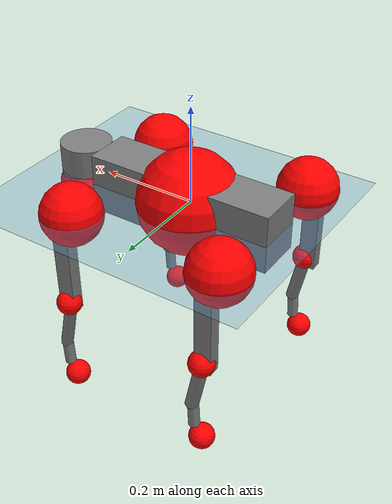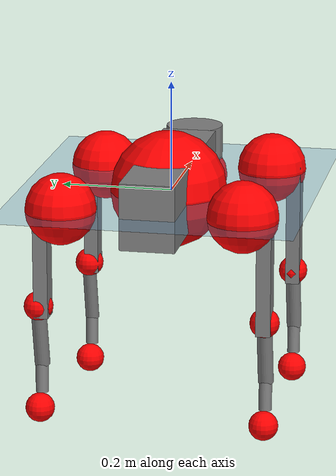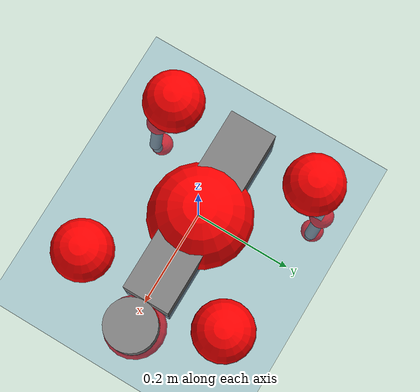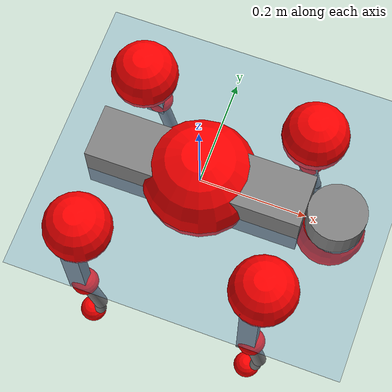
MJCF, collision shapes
<mujoco model="go2">
  <compiler angle="radian" assetdir="assets" balanceinertia="true" inertiafromgeom="false"/>

  <option timestep="0.005" density="1.2" viscosity="2e-05"/>

  <size nkey="1"/>

  <visual>
    <quality shadowsize="8192"/>
    <map shadowclip="0.5"/>
  </visual>

  <default>
    <default class="/">
      <geom contype="0" conaffinity="0" group="1" solref="-1000 -80"/>
      <site size="0.01 0.005 0.005" group="5"/>
      <general forcelimited="true" biastype="affine" gainprm="20" biasprm="0 -20 -0.5"/>
      <default class="go2">
        <joint armature="0.01" damping="0.01" frictionloss="0.2"/>
        <geom condim="1" margin="0.001"/>
        <default class="visual">
          <geom type="mesh" group="2"/>
        </default>
        <default class="collision">
          <geom group="3"/>
          <default class="foot">
            <geom size="0.022 0 0" condim="6" priority="1" friction="0.8 0.02 0.01" solimp="0.015 1 0.022"/>
          </default>
        </default>
        <default class="reward_collision_sphere">
          <geom group="5" rgba="1 0 0 1"/>
        </default>
      </default>
    </default>
  </default>

  <asset>
    <texture type="skybox" colorspace="auto" name="//unnamed_texture_0" builtin="gradient" rgb1="0.95 0.95 0.95" rgb2="0.95 0.95 0.95" width="100" height="600"/>
    <texture type="2d" colorspace="auto" name="texplane" builtin="checker" rgb1="0.345 0.575 0.748" rgb2="0.345 0.575 0.748" markrgb="1 1 1" width="512" height="512"/>
    <material name="MatPlane" class="/" texture="texplane" texuniform="true" texrepeat="2 2" specular="0.9"/>
    <material name="metal" class="/" rgba="0.9 0.95 0.95 1"/>
    <material name="black" class="/" rgba="0 0 0 1"/>
    <material name="white" class="/"/>
    <material name="gray" class="/" rgba="0.671705 0.692426 0.77427 1"/>
    <mesh name="base_0" class="/" file="base_0.obj"/>
    <mesh name="base_1" class="/" file="base_1.obj"/>
    <mesh name="base_2" class="/" file="base_2.obj"/>
    <mesh name="base_3" class="/" file="base_3.obj"/>
    <mesh name="base_4" class="/" file="base_4.obj"/>
    <mesh name="hip_0" class="/" file="hip_0.obj"/>
    <mesh name="hip_1" class="/" file="hip_1.obj"/>
    <mesh name="thigh_0" class="/" file="thigh_0.obj"/>
    <mesh name="thigh_1" class="/" file="thigh_1.obj"/>
    <mesh name="thigh_mirror_0" class="/" file="thigh_mirror_0.obj"/>
    <mesh name="thigh_mirror_1" class="/" file="thigh_mirror_1.obj"/>
    <mesh name="calf_0" class="/" file="calf_0.obj"/>
    <mesh name="calf_1" class="/" file="calf_1.obj"/>
    <mesh name="calf_mirror_0" class="/" file="calf_mirror_0.obj"/>
    <mesh name="calf_mirror_1" class="/" file="calf_mirror_1.obj"/>
    <mesh name="foot" class="/" file="foot.obj"/>
  </asset>

  <worldbody>
    <geom name="floor" class="/" size="100 100 0.125" type="plane" group="0" material="MatPlane"/>
    <light name="toplight_shadow" class="/" pos="0 0 5" dir="0.0990148 0.0990148 -0.990148" type="directional" ambient="0.04 0.04 0.04" diffuse="0.55 0.55 0.55" specular="0.12 0.12 0.12"/>
    <light name="toplight_fill" class="/" pos="0 0 5" dir="0.0990148 0.0990148 -0.990148" type="directional" castshadow="false" ambient="0.04 0.04 0.04" diffuse="0.3 0.3 0.3" specular="0.08 0.08 0.08"/>
    <body name="trunk" childclass="go2" pos="0.000254448 0.00442195 0.00210164" quat="1 1.73235e-07 9.57851e-05 1.38384e-05">
      <inertial pos="0.0193501 0.00507273 -0.00459813" quat="-0.00182715 0.741781 -0.0181306 0.670394" mass="8.38433" diaginertia="0.0590348 0.509411 0.0144804"/>
      <joint name="//unnamed_joint_0" type="free" armature="0" damping="0" frictionloss="0"/>
      <geom name="//unnamed_geom_1" class="visual" material="black" mesh="base_0"/>
      <geom name="//unnamed_geom_2" class="visual" material="black" mesh="base_1"/>
      <geom name="//unnamed_geom_3" class="visual" material="black" mesh="base_2"/>
      <geom name="//unnamed_geom_4" class="visual" material="white" mesh="base_3"/>
      <geom name="//unnamed_geom_5" class="visual" material="gray" mesh="base_4"/>
      <geom name="trunk_1" class="collision" size="0.199232 0.0495167 0.0603734" type="box"/>
      <geom name="trunk_2" class="collision" size="0.0529591 0.0476632" pos="0.252579 0 0.00899575" type="cylinder"/>
      <geom name="trunk_3" class="collision" size="0.0497815" pos="0.259669 0 -0.0539745"/>
      <geom name="//unnamed_geom_9" class="reward_collision_sphere" size="0.105918"/>
      <geom name="//unnamed_geom_10" class="reward_collision_sphere" size="0.0635509" pos="0.248148 0 -0.0404809"/>
      <site name="imu" pos="-0.0431839 -0.00954348 0.0601033" size="0.0105918"/>
      <camera name="track" pos="0 -2.78345 0" quat="0.707107 0.707107 0 0" mode="trackcom"/>
      <camera name="ego_camera" pos="0.276508 0 0.0404809" quat="-0.5 -0.5 0.5 0.5"/>
      <body name="FL_hip" pos="0.168427 0.0561363 -0.00667406" quat="0.999997 -0.000638674 0.00209656 0.00105702">
        <inertial pos="-0.00659789 0.00319852 -0.001614" quat="0.501951 0.494015 0.499963 0.504015" mass="0.836828" diaginertia="0.000482836 0.00335985 0.000277116"/>
        <joint name="FL_hip_joint" pos="0 0 0" axis="0.999992 0.00321093 -0.00230136" range="-1.22382 1.01807" armature="0.00981982" damping="0.0302069" frictionloss="0.179119"/>
        <geom name="//unnamed_geom_11" class="visual" material="metal" mesh="hip_0"/>
        <geom name="//unnamed_geom_12" class="visual" material="gray" mesh="hip_1"/>
        <geom name="//unnamed_geom_13" class="collision" size="0.0487224 0.0211836" pos="0 0.111338 0" quat="0.707107 0.707107 0 0" type="cylinder"/>
        <geom name="//unnamed_geom_14" class="reward_collision_sphere" size="0.0635509" pos="0 0.0974209 0"/>
        <body name="FL_thigh" pos="0.00110513 0.124349 -0.00167349" quat="0.999998 -0.000601066 0.00165888 -0.000231119">
          <inertial pos="-0.0068277 -0.0333381 -0.027286" quat="0.825991 0.0966244 -0.0460557 0.553427" mass="1.36943" diaginertia="0.0034109 0.0309001 0.000522929"/>
          <joint name="FL_thigh_joint" pos="0 0 0" axis="-0.0211873 0.999727 0.00985776" range="-1.58999 3.35125" armature="0.00794445" damping="0.01957" frictionloss="0.213733"/>
          <geom name="//unnamed_geom_15" class="visual" material="metal" mesh="thigh_0"/>
          <geom name="//unnamed_geom_16" class="visual" material="gray" mesh="thigh_1"/>
          <geom name="//unnamed_geom_17" class="collision" size="0.112803 0.012975 0.0180061" pos="0 0 -0.0958048" quat="0.707107 0 0.707107 0" type="box"/>
          <body name="FL_calf" pos="-0.00129905 0.00681597 -0.191803" quat="1 0.000265877 -0.000263616 0.000654428">
            <inertial pos="0.00271091 -0.000442457 -0.119074" quat="0.71124 0.00123255 -0.00320604 0.702941" mass="0.278527" diaginertia="0.000855927 0.00692923 3.42212e-05"/>
            <joint name="FL_calf_joint" pos="0 0 0" axis="-0.00500857 0.999985 0.00199606" range="-2.56577 -0.83208" armature="0.0119804" damping="0.00901212" frictionloss="0.219309"/>
            <geom name="//unnamed_geom_18" class="visual" material="gray" mesh="calf_0"/>
            <geom name="//unnamed_geom_19" class="visual" material="black" mesh="calf_1"/>
            <geom name="FL_calf0" class="collision" size="0.0127102 0.0635509" pos="0.00708994 0 -0.0539745" quat="0.994493 0 -0.104807 0" type="cylinder"/>
            <geom name="//unnamed_geom_21" class="collision" size="0.011651 0.0344234" pos="0.0177249 0 -0.133137" quat="0.999688 0 0.0249974 0" type="cylinder"/>
            <geom name="//unnamed_geom_22" class="visual" pos="0 0 -0.19161" quat="1 0 0 0" material="black" mesh="foot"/>
            <geom name="FL_foot" class="foot" size="0.022363" pos="-0.00177249 0 -0.19161"/>
            <geom name="//unnamed_geom_24" class="reward_collision_sphere" size="0.0264795"/>
            <geom name="//unnamed_geom_25" class="reward_collision_sphere" size="0.0264795" pos="-0.00177249 0 -0.19161"/>
            <site name="FL_foot" class="foot" pos="-0.00177249 0 -0.19161" size="0.0105918"/>
          </body>
        </body>
      </body>
      <body name="FR_hip" pos="0.175517 -0.0634941 0.00129352" quat="1 -0.000708668 3.75711e-05 0.000123278">
        <inertial pos="-0.00498918 -0.000958602 0.00107858" quat="0.502591 0.500666 0.494763 0.501941" mass="0.88746" diaginertia="0.000490554 0.00354735 0.000272845"/>
        <joint name="FR_hip_joint" pos="0 0 0" axis="0.99989 -0.0137573 -0.00547989" stiffness="0.00143172" range="-1.04823 1.00808" armature="0.0111317" damping="0.011773" frictionloss="0.216242"/>
        <geom name="//unnamed_geom_26" class="visual" pos="0 4.28742e-09 1.83896e-07" quat="4.63268e-05 1 0 0" material="metal" mesh="hip_0"/>
        <geom name="//unnamed_geom_27" class="visual" pos="0 6.95042e-09 -4.54846e-07" quat="4.63268e-05 1 0 0" material="gray" mesh="hip_1"/>
        <geom name="//unnamed_geom_28" class="collision" size="0.0487224 0.0211836" pos="0 -0.111338 0" quat="0.707107 0.707107 0 0" type="cylinder"/>
        <geom name="//unnamed_geom_29" class="reward_collision_sphere" size="0.0635509" pos="0 -0.0974209 0"/>
        <body name="FR_thigh" pos="-0.00703256 -0.141316 -0.00833932" quat="1 -0.000206709 -0.000265797 -0.000390632">
          <inertial pos="-0.00260439 0.0393441 -0.031138" quat="0.548005 -0.0102156 0.0811424 0.832467" mass="1.22274" diaginertia="0.00311909 0.0284181 0.000483802"/>
          <joint name="FR_thigh_joint" pos="0 0 0" axis="-0.005727 -0.999961 0.00668075" range="-3.3468 1.57325" armature="0.0117469" damping="0.0153473" frictionloss="0.214698"/>
          <geom name="//unnamed_geom_30" class="visual" material="metal" mesh="thigh_mirror_0"/>
          <geom name="//unnamed_geom_31" class="visual" material="gray" mesh="thigh_mirror_1"/>
          <geom name="//unnamed_geom_32" class="collision" size="0.112803 0.012975 0.0180061" pos="0 0 -0.0958048" quat="0.707107 0 0.707107 0" type="box"/>
          <body name="FR_calf" pos="0.00711587 0.00192596 -0.189" quat="0.999996 -0.00111324 0.000890433 -0.00248209">
            <inertial pos="0.00566578 0.000702815 -0.130481" quat="0.703562 -0.00108768 -0.0101762 0.71056" mass="0.295287" diaginertia="0.000834048 0.00760995 3.17049e-05"/>
            <joint name="FR_calf_joint" pos="0 0 0" axis="0.038574 -0.999188 0.0116021" stiffness="0.0189628" range="0.881119 2.75561" armature="0.00718272" damping="0" frictionloss="0.270892"/>
            <geom name="//unnamed_geom_33" class="visual" material="gray" mesh="calf_mirror_0"/>
            <geom name="//unnamed_geom_34" class="visual" material="black" mesh="calf_mirror_1"/>
            <geom name="FR_calf0" class="collision" size="0.0137694 0.0635509" pos="0.00886243 0 -0.0539745" quat="0.995004 0 -0.0998334 0" type="cylinder"/>
            <geom name="//unnamed_geom_36" class="collision" size="0.011651 0.0344234" pos="0.0177249 0 -0.133137" quat="0.999688 0 0.0249974 0" type="cylinder"/>
            <geom name="//unnamed_geom_37" class="visual" pos="0 0 -0.19161" quat="1 0 0 0" material="black" mesh="foot"/>
            <geom name="FR_foot" class="foot" size="0.0229427" pos="-0.00177249 0 -0.19161"/>
            <geom name="//unnamed_geom_39" class="reward_collision_sphere" size="0.0264795"/>
            <geom name="//unnamed_geom_40" class="reward_collision_sphere" size="0.0264795" pos="-0.00177249 0 -0.19161"/>
            <site name="FR_foot" class="foot" pos="-0.00177249 0 -0.19161" size="0.0105918"/>
          </body>
        </body>
      </body>
      <body name="RL_hip" pos="-0.169341 0.0627446 0.000949331" quat="1 4.84726e-05 6.48896e-05 -2.53781e-06">
        <inertial pos="0.00433253 0.00780242 -0.00188414" quat="0.505596 0.499755 0.499483 0.49511" mass="0.812154" diaginertia="0.000477798 0.00309911 0.000281629"/>
        <joint name="RL_hip_joint" pos="0 0 0" axis="-0.999943 0.00624369 0.00868624" range="-1.01558 1.05284" armature="0.0100726" damping="0.0061869" frictionloss="0.231523"/>
        <geom name="//unnamed_geom_41" class="visual" pos="1.16148e-10 0 2.27677e-08" quat="4.63268e-05 0 1 0" material="metal" mesh="hip_0"/>
        <geom name="//unnamed_geom_42" class="visual" pos="1.8829e-10 0 2.01917e-08" quat="4.63268e-05 0 1 0" material="gray" mesh="hip_1"/>
        <geom name="//unnamed_geom_43" class="collision" size="0.0487224 0.0211836" pos="0 0.111338 0" quat="0.707107 0.707107 0 0" type="cylinder"/>
        <geom name="//unnamed_geom_44" class="reward_collision_sphere" size="0.0635509" pos="0 0.0974209 0"/>
        <body name="RL_thigh" pos="0.00272973 0.133313 0.00769669" quat="1 -0.000628682 -0.000203877 0.000612435">
          <inertial pos="-0.00347477 -0.0331082 -0.0221782" quat="0.827339 0.0867113 -0.0107594 0.554865" mass="1.22309" diaginertia="0.00320802 0.030445 0.000505177"/>
          <joint name="RL_thigh_joint" pos="0 0 0" axis="-0.0244422 0.999699 -0.00212792" range="-0.436497 4.48864" armature="0.0105613" damping="0.0327773" frictionloss="0.189887"/>
          <geom name="//unnamed_geom_45" class="visual" material="metal" mesh="thigh_0"/>
          <geom name="//unnamed_geom_46" class="visual" material="gray" mesh="thigh_1"/>
          <geom name="//unnamed_geom_47" class="collision" size="0.112803 0.012975 0.0180061" pos="0 0 -0.0958048" quat="0.707107 0 0.707107 0" type="box"/>
          <body name="RL_calf" pos="0.00353091 0.00854615 -0.191544" quat="1 -0.000556767 -0.000306732 -0.00017271">
            <inertial pos="0.00340908 -0.000787463 -0.129422" quat="0.70857 -0.00674632 -0.00575547 0.705585" mass="0.270131" diaginertia="0.000733465 0.00725504 3.01472e-05"/>
            <joint name="RL_calf_joint" pos="0 0 0" axis="0.0176253 0.999842 0.0024918" range="-2.88557 -0.753149" armature="0.0111865" damping="0.0229683" frictionloss="0.2046"/>
            <geom name="//unnamed_geom_48" class="visual" material="gray" mesh="calf_0"/>
            <geom name="//unnamed_geom_49" class="visual" material="black" mesh="calf_1"/>
            <geom name="RL_calf0" class="collision" size="0.0137694 0.0635509" pos="0.00886243 0 -0.0539745" quat="0.995004 0 -0.0998334 0" type="cylinder"/>
            <geom name="//unnamed_geom_51" class="collision" size="0.011651 0.0344234" pos="0.0177249 0 -0.133137" quat="0.999688 0 0.0249974 0" type="cylinder"/>
            <geom name="//unnamed_geom_52" class="visual" pos="0 0 -0.19161" quat="1 0 0 0" material="black" mesh="foot"/>
            <geom name="RL_foot" class="foot" size="0.022503" pos="-0.00177249 0 -0.19161"/>
            <geom name="//unnamed_geom_54" class="reward_collision_sphere" size="0.0264795"/>
            <geom name="//unnamed_geom_55" class="reward_collision_sphere" size="0.0264795" pos="-0.00177249 0 -0.19161"/>
            <site name="RL_foot" class="foot" pos="-0.00177249 0 -0.19161" size="0.0105918"/>
          </body>
        </body>
      </body>
      <body name="RR_hip" pos="-0.170987 -0.0666855 0.00422589" quat="0.999996 -0.00208126 0.000949094 0.00164139">
        <inertial pos="0.00592692 -0.00817542 0.00280136" quat="0.500631 0.500798 0.492356 0.506118" mass="0.80192" diaginertia="0.000446985 0.00304127 0.000252295"/>
        <joint name="RR_hip_joint" pos="0 0 0" axis="-0.999515 0.0177336 -0.025606" range="-1.09146 1.18155" armature="0.0106084" damping="0.00886737" frictionloss="0.234494"/>
        <geom name="//unnamed_geom_56" class="visual" pos="-9.86479e-11 4.28742e-09 -1.61129e-07" quat="2.14617e-09 4.63268e-05 4.63268e-05 -1" material="metal" mesh="hip_0"/>
        <geom name="//unnamed_geom_57" class="visual" pos="-2.31575e-10 6.95042e-09 4.75038e-07" quat="2.14617e-09 4.63268e-05 4.63268e-05 -1" material="gray" mesh="hip_1"/>
        <geom name="//unnamed_geom_58" class="collision" size="0.0487224 0.0211836" pos="0 -0.111338 0" quat="0.707107 0.707107 0 0" type="cylinder"/>
        <geom name="//unnamed_geom_59" class="reward_collision_sphere" size="0.0635509" pos="0 -0.0974209 0"/>
        <body name="RR_thigh" pos="-0.000200779 -0.136667 -0.00271871" quat="0.999995 0.00158612 -0.00155809 -0.00213108">
          <inertial pos="-0.00292361 0.0375455 -0.031686" quat="0.556869 -0.0207552 0.0897877 0.825472" mass="1.43731" diaginertia="0.00343107 0.0318931 0.000532473"/>
          <joint name="RR_thigh_joint" pos="0 0 0" axis="0.0255027 -0.999277 -0.0281956" range="-4.4977 0.487634" armature="0.00970543" damping="0.0199234" frictionloss="0.232396"/>
          <geom name="//unnamed_geom_60" class="visual" material="metal" mesh="thigh_mirror_0"/>
          <geom name="//unnamed_geom_61" class="visual" material="gray" mesh="thigh_mirror_1"/>
          <geom name="//unnamed_geom_62" class="collision" size="0.112803 0.012975 0.0180061" pos="0 0 -0.0958048" quat="0.707107 0 0.707107 0" type="box"/>
          <body name="RR_calf" pos="0.0094018 0.000890101 -0.191563" quat="1 0.00042604 3.11093e-05 6.76878e-05">
            <inertial pos="-0.00332675 0.000944773 -0.128491" quat="0.703734 -0.00462836 0.00162671 0.710447" mass="0.281924" diaginertia="0.000752577 0.00760233 3.22286e-05"/>
            <joint name="RR_calf_joint" pos="0 0 0" axis="0.00268272 -0.999283 -0.0377782" stiffness="0.00898972" range="0.942641 2.58502" armature="0.0141383" damping="0" frictionloss="0.215495"/>
            <geom name="//unnamed_geom_63" class="visual" material="gray" mesh="calf_mirror_0"/>
            <geom name="//unnamed_geom_64" class="visual" material="black" mesh="calf_mirror_1"/>
            <geom name="RR_calf0" class="collision" size="0.0137694 0.0635509" pos="0.00886243 0 -0.0539745" quat="0.995004 0 -0.0998334 0" type="cylinder"/>
            <geom name="//unnamed_geom_66" class="collision" size="0.011651 0.0344234" pos="0.0177249 0 -0.133137" quat="0.999688 0 0.0249974 0" type="cylinder"/>
            <geom name="//unnamed_geom_67" class="visual" pos="0 0 -0.19161" quat="1 0 0 0" material="black" mesh="foot"/>
            <geom name="RR_foot" class="foot" size="0.0253064" pos="-0.00177249 0 -0.19161"/>
            <geom name="//unnamed_geom_69" class="reward_collision_sphere" size="0.0264795"/>
            <geom name="//unnamed_geom_70" class="reward_collision_sphere" size="0.0264795" pos="-0.00177249 0 -0.19161"/>
            <site name="RR_foot" class="foot" pos="-0.00177249 0 -0.19161" size="0.0105918"/>
          </body>
        </body>
      </body>
    </body>
  </worldbody>

  <contact>
    <pair class="/" geom1="floor" geom2="FL_foot" name="//unnamed_contact_0"/>
    <pair class="/" geom1="floor" geom2="FR_foot" name="//unnamed_contact_1"/>
    <pair class="/" geom1="floor" geom2="RL_foot" name="//unnamed_contact_2"/>
    <pair class="/" geom1="floor" geom2="RR_foot" name="//unnamed_contact_3"/>
  </contact>

  <actuator>
    <general name="FL_hip" class="/" joint="FL_hip_joint" forcerange="-16.9532 16.9532" gainprm="17.4749" biasprm="0 -17.4749 -0.534716"/>
    <general name="FL_thigh" class="/" joint="FL_thigh_joint" forcerange="-28.0015 28.0015" gainprm="17.4749" biasprm="0 -17.4749 -0.534716"/>
    <general name="FL_calf" class="/" joint="FL_calf_joint" forcerange="-46.4884 46.4884" gainprm="17.4749" biasprm="0 -17.4749 -0.534716"/>
    <general name="FR_hip" class="/" joint="FR_hip_joint" forcerange="-18.4476 18.4476" gainprm="17.4749" biasprm="0 -17.4749 -0.534716"/>
    <general name="FR_thigh" class="/" joint="FR_thigh_joint" forcerange="-18.411 18.411" gainprm="17.4749" biasprm="0 -17.4749 -0.534716"/>
    <general name="FR_calf" class="/" joint="FR_calf_joint" forcerange="-42.4978 42.4978" gainprm="17.4749" biasprm="0 -17.4749 -0.534716"/>
    <general name="RL_hip" class="/" joint="RL_hip_joint" forcerange="-23.6545 23.6545" gainprm="17.4749" biasprm="0 -17.4749 -0.534716"/>
    <general name="RL_thigh" class="/" joint="RL_thigh_joint" forcerange="-27.2967 27.2967" gainprm="17.4749" biasprm="0 -17.4749 -0.534716"/>
    <general name="RL_calf" class="/" joint="RL_calf_joint" forcerange="-51.866 51.866" gainprm="17.4749" biasprm="0 -17.4749 -0.534716"/>
    <general name="RR_hip" class="/" joint="RR_hip_joint" forcerange="-32.4821 32.4821" gainprm="17.4749" biasprm="0 -17.4749 -0.534716"/>
    <general name="RR_thigh" class="/" joint="RR_thigh_joint" forcerange="-23.1355 23.1355" gainprm="17.4749" biasprm="0 -17.4749 -0.534716"/>
    <general name="RR_calf" class="/" joint="RR_calf_joint" forcerange="-47.7228 47.7228" gainprm="17.4749" biasprm="0 -17.4749 -0.534716"/>
  </actuator>

  <sensor>
    <gyro site="imu" name="imu_angular_velocity"/>
    <velocimeter site="imu" name="imu_linear_velocity"/>
    <framelinvel objtype="site" objname="FL_foot" name="FL_foot_global_linear_velocity"/>
    <framelinvel objtype="site" objname="FR_foot" name="FR_foot_global_linear_velocity"/>
    <framelinvel objtype="site" objname="RL_foot" name="RL_foot_global_linear_velocity"/>
    <framelinvel objtype="site" objname="RR_foot" name="RR_foot_global_linear_velocity"/>
  </sensor>

  <keyframe>
    <key name="home" qpos="0 0 0.325 1 0 0 0 0.1 0.8 -1.5 -0.1 -0.8 1.5 -0.1 0.8 -1.5 0.1 -0.8 1.5"/>
  </keyframe>
</mujoco>
